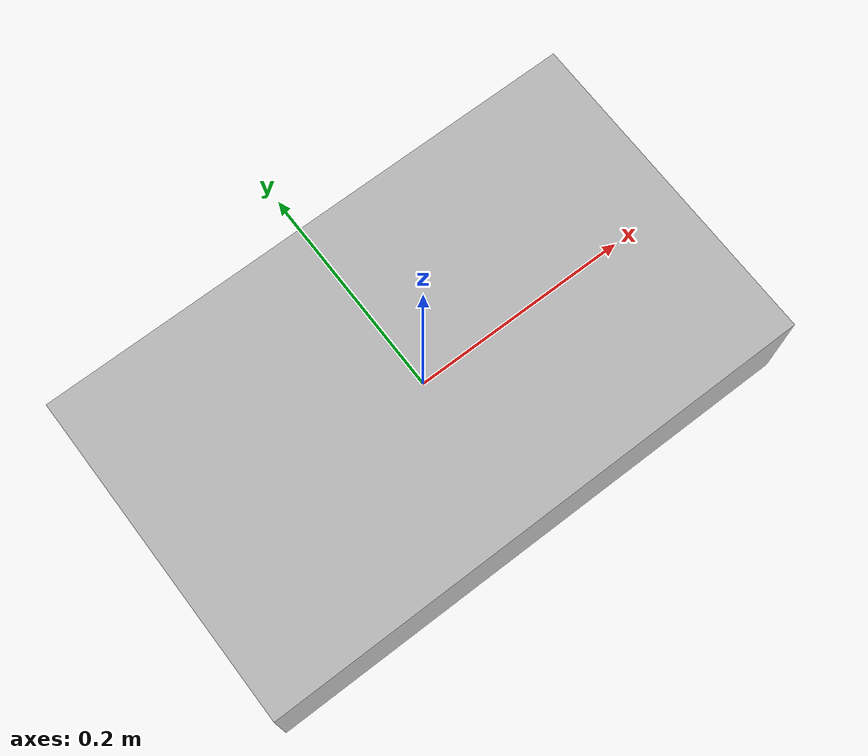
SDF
<?xml version="1.0"?>

<sdf version="1.9">

  <model name="rover">

    <static>false</static>

    <pose>0 0 0 0 0 0</pose>

    <!-- BASE LINK -->

    <link name="base_link">

      <inertial>
        <mass>5.0</mass>

        <inertia>
          <ixx>0.10</ixx>
          <iyy>0.20</iyy>
          <izz>0.20</izz>
          <ixy>0</ixy>
          <ixz>0</ixz>
          <iyz>0</iyz>
        </inertia>

      </inertial>

      <collision name="base_collision">
        <geometry>
          <box>
            <size>0.5 0.3 0.1</size>
          </box>
        </geometry>
      </collision>

      <visual name="base_visual">
        <geometry>
          <box>
            <size>0.5 0.3 0.1</size>
          </box>
        </geometry>
      </visual>

    </link>

    <!-- LEFT WHEEL -->

    <link name="left_wheel">

      <pose>0 0 0 1.5708 0 0</pose>

      <inertial>

        <mass>0.5</mass>

        <inertia>
          <ixx>0.001</ixx>
          <iyy>0.001</iyy>
          <izz>0.001</izz>
          <ixy>0</ixy>
          <ixz>0</ixz>
          <iyz>0</iyz>
        </inertia>

      </inertial>

      <collision name="left_collision">
        <geometry>
          <cylinder>
            <radius>0.05</radius>
            <length>0.02</length>
          </cylinder>
        </geometry>
      </collision>

      <visual name="left_visual">
        <geometry>
          <cylinder>
            <radius>0.05</radius>
            <length>0.02</length>
          </cylinder>
        </geometry>
      </visual>

    </link>

    <!-- RIGHT WHEEL -->

    <link name="right_wheel">

      <pose>0 0 0 1.5708 0 0</pose>

      <inertial>

        <mass>0.5</mass>

        <inertia>
          <ixx>0.001</ixx>
          <iyy>0.001</iyy>
          <izz>0.001</izz>
          <ixy>0</ixy>
          <ixz>0</ixz>
          <iyz>0</iyz>
        </inertia>

      </inertial>

      <collision name="right_collision">
        <geometry>
          <cylinder>
            <radius>0.05</radius>
            <length>0.02</length>
          </cylinder>
        </geometry>
      </collision>

      <visual name="right_visual">
        <geometry>
          <cylinder>
            <radius>0.05</radius>
            <length>0.02</length>
          </cylinder>
        </geometry>
      </visual>

    </link>

    <!-- LEFT WHEEL JOINT -->

    <joint name="left_wheel_joint" type="revolute">

      <parent>base_link</parent>
      <child>left_wheel</child>

      <pose>0 0.15 0 0 0 0</pose>

      <axis>

        <xyz>0 1 0</xyz>

        <limit>
          <lower>-1000000</lower>
          <upper>1000000</upper>
          <effort>1000000</effort>
          <velocity>1000</velocity>
        </limit>

      </axis>

    </joint>

    <!-- RIGHT WHEEL JOINT -->

    <joint name="right_wheel_joint" type="revolute">

      <parent>base_link</parent>
      <child>right_wheel</child>

      <pose>0 -0.15 0 0 0 0</pose>

      <axis>

        <xyz>0 1 0</xyz>

        <limit>
          <lower>-1000000</lower>
          <upper>1000000</upper>
          <effort>1000000</effort>
          <velocity>1000</velocity>
        </limit>

      </axis>

    </joint>
    <plugin
      filename="libignition-gazebo6-diff-drive-system.so"
      name="ignition::gazebo::systems::DiffDrive">
      <left_joint>left_wheel_joint</left_joint>
      <right_joint>right_wheel_joint</right_joint>
      <wheel_separation>0.30</wheel_separation>
      <wheel_radius>0.05</wheel_radius>
    </plugin>

  </model>

</sdf>
